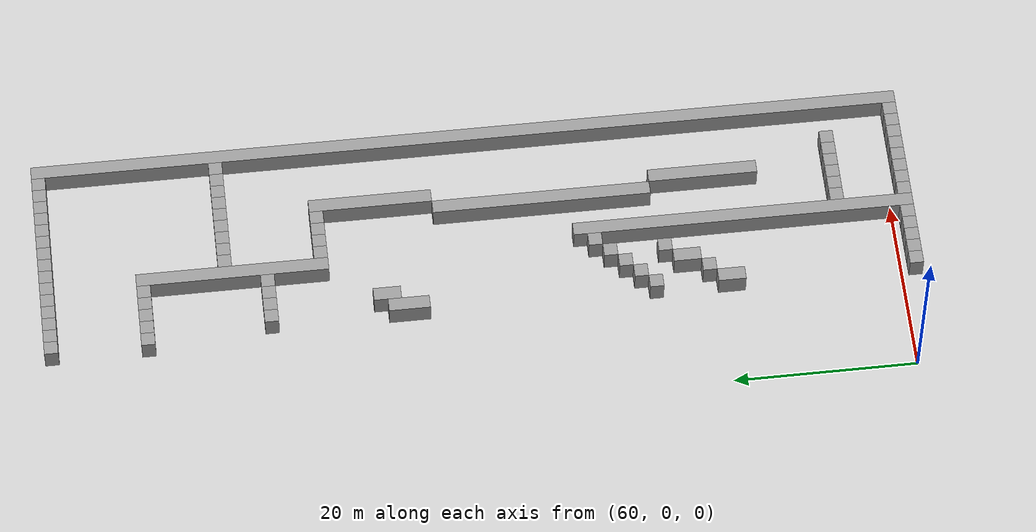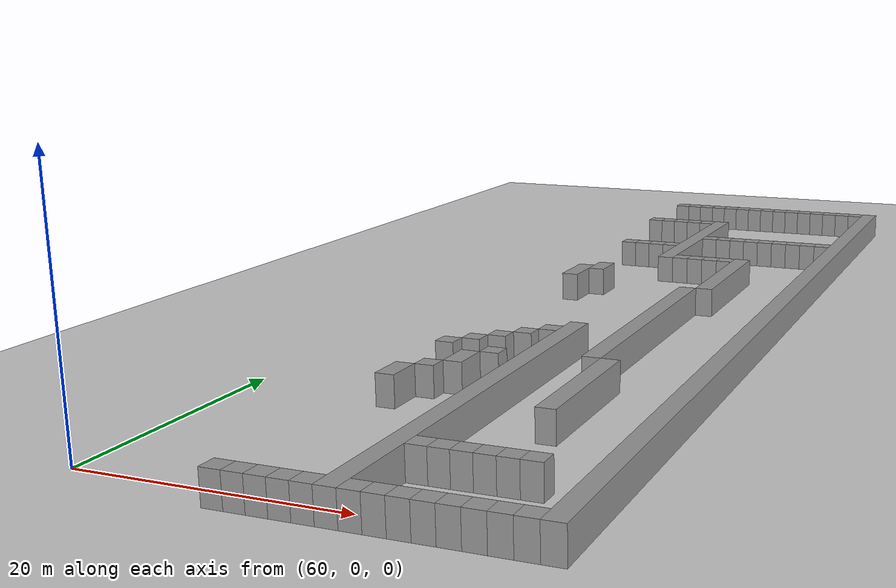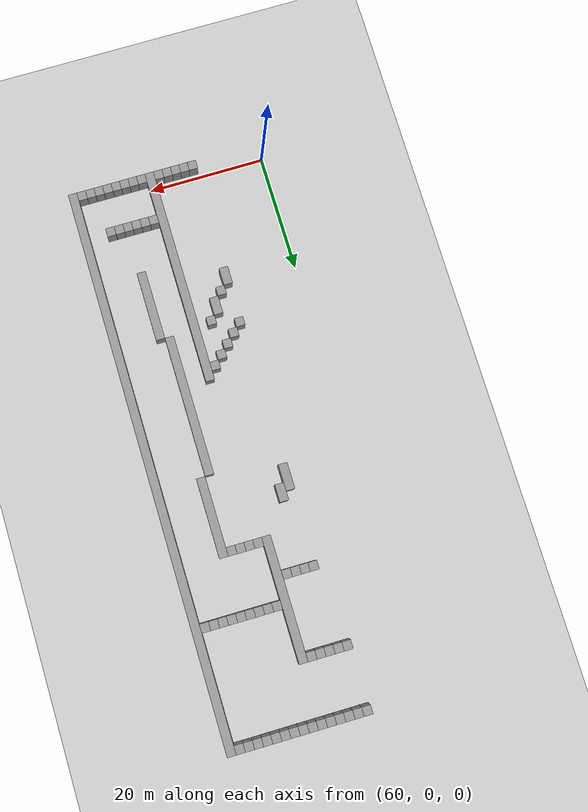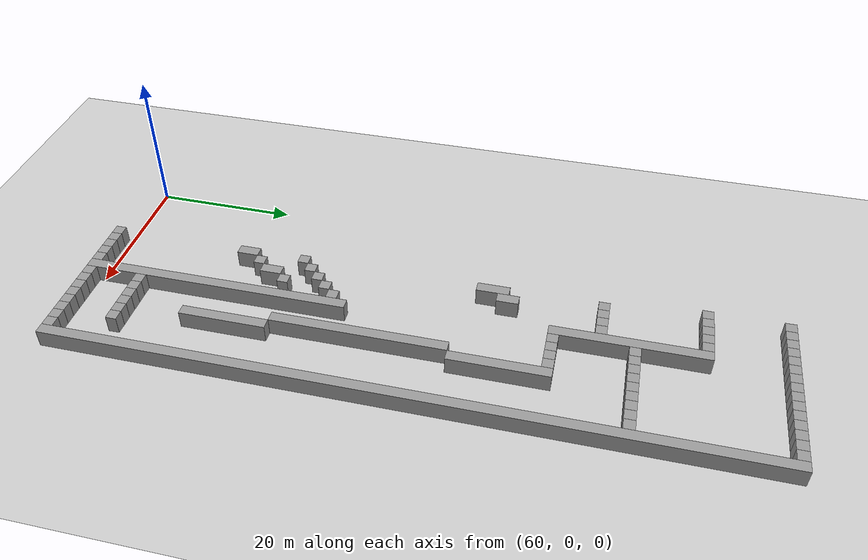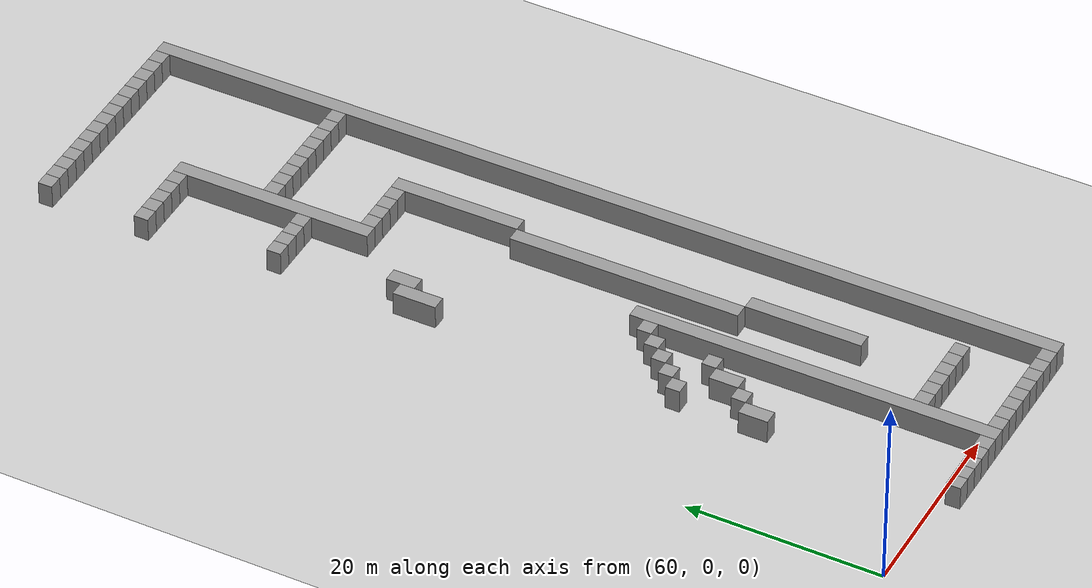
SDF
<sdf version="1.4">
 <world name="1_wall">
  <model name="ground_plane">
   <static>1</static>
   <link name="link">
    <collision name="collision">
     <geometry><plane><normal>0 0 1</normal><size>1000 1000</size></plane></geometry>
     <surface><friction><ode><mu>100</mu><mu2>50</mu2></ode></friction></surface>
    </collision>
    <visual name="visual">
     <cast_shadows>0</cast_shadows>
     <geometry><plane><normal>0 0 1</normal><size>10000 10000</size></plane></geometry>
     <material>
      <script><uri>file://media/materials/scripts/gazebo.material</uri><name>Gazebo/Grey</name></script>
     </material>
    </visual>
    <velocity_decay><linear>0</linear><angular>0</angular></velocity_decay>
   </link>
  </model>
  <model name="Wall_363">
   <static>1</static>
   <link name="Wall_363">
    <collision name="Wall_Collision_363">
     <geometry><box><size>1.5 1.5 2.5</size></box></geometry>
     <pose>0 0 1.25 0 -0 0</pose>
    </collision>
    <visual name="Wall_Visual_363">
     <pose>0 0 1.25 0 -0 0</pose>
     <geometry><box><size>1.5 1.5 2.5</size></box></geometry>
     <material>
      <script><uri>file://media/materials/scripts/gazebo.material</uri><name>Gazebo/Grey</name></script>
     </material>
    </visual>
    <velocity_decay><linear>0</linear><angular>0</angular></velocity_decay>
    <pose>70.5 82.5 0 0 0 1.5707963267948966</pose>
   </link>
  </model>
  <model name="Wall_364">
   <static>1</static>
   <link name="Wall_364">
    <collision name="Wall_Collision_364">
     <geometry><box><size>1.5 1.5 2.5</size></box></geometry>
     <pose>0 0 1.25 0 -0 0</pose>
    </collision>
    <visual name="Wall_Visual_364">
     <pose>0 0 1.25 0 -0 0</pose>
     <geometry><box><size>1.5 1.5 2.5</size></box></geometry>
     <material>
      <script><uri>file://media/materials/scripts/gazebo.material</uri><name>Gazebo/Grey</name></script>
     </material>
    </visual>
    <velocity_decay><linear>0</linear><angular>0</angular></velocity_decay>
    <pose>70.5 93.0 0 0 0 1.5707963267948966</pose>
   </link>
  </model>
  <model name="Wall_365">
   <static>1</static>
   <link name="Wall_365">
    <collision name="Wall_Collision_365">
     <geometry><box><size>1.5 1.5 2.5</size></box></geometry>
     <pose>0 0 1.25 0 -0 0</pose>
    </collision>
    <visual name="Wall_Visual_365">
     <pose>0 0 1.25 0 -0 0</pose>
     <geometry><box><size>1.5 1.5 2.5</size></box></geometry>
     <material>
      <script><uri>file://media/materials/scripts/gazebo.material</uri><name>Gazebo/Grey</name></script>
     </material>
    </visual>
    <velocity_decay><linear>0</linear><angular>0</angular></velocity_decay>
    <pose>72.0 -1.5 0 0 0 1.5707963267948966</pose>
   </link>
  </model>
  <model name="Wall_366">
   <static>1</static>
   <link name="Wall_366">
    <collision name="Wall_Collision_366">
     <geometry><box><size>3.0 1.5 2.5</size></box></geometry>
     <pose>0 0 1.25 0 -0 0</pose>
    </collision>
    <visual name="Wall_Visual_366">
     <pose>0 0 1.25 0 -0 0</pose>
     <geometry><box><size>3.0 1.5 2.5</size></box></geometry>
     <material>
      <script><uri>file://media/materials/scripts/gazebo.material</uri><name>Gazebo/Grey</name></script>
     </material>
    </visual>
    <velocity_decay><linear>0</linear><angular>0</angular></velocity_decay>
    <pose>72.0 18.75 0 0 0 1.5707963267948966</pose>
   </link>
  </model>
  <model name="Wall_367">
   <static>1</static>
   <link name="Wall_367">
    <collision name="Wall_Collision_367">
     <geometry><box><size>1.5 1.5 2.5</size></box></geometry>
     <pose>0 0 1.25 0 -0 0</pose>
    </collision>
    <visual name="Wall_Visual_367">
     <pose>0 0 1.25 0 -0 0</pose>
     <geometry><box><size>1.5 1.5 2.5</size></box></geometry>
     <material>
      <script><uri>file://media/materials/scripts/gazebo.material</uri><name>Gazebo/Grey</name></script>
     </material>
    </visual>
    <velocity_decay><linear>0</linear><angular>0</angular></velocity_decay>
    <pose>72.0 27.0 0 0 0 1.5707963267948966</pose>
   </link>
  </model>
  <model name="Wall_368">
   <static>1</static>
   <link name="Wall_368">
    <collision name="Wall_Collision_368">
     <geometry><box><size>4.5 1.5 2.5</size></box></geometry>
     <pose>0 0 1.25 0 -0 0</pose>
    </collision>
    <visual name="Wall_Visual_368">
     <pose>0 0 1.25 0 -0 0</pose>
     <geometry><box><size>4.5 1.5 2.5</size></box></geometry>
     <material>
      <script><uri>file://media/materials/scripts/gazebo.material</uri><name>Gazebo/Grey</name></script>
     </material>
    </visual>
    <velocity_decay><linear>0</linear><angular>0</angular></velocity_decay>
    <pose>72.0 54.0 0 0 0 1.5707963267948966</pose>
   </link>
  </model>
  <model name="Wall_369">
   <static>1</static>
   <link name="Wall_369">
    <collision name="Wall_Collision_369">
     <geometry><box><size>1.5 1.5 2.5</size></box></geometry>
     <pose>0 0 1.25 0 -0 0</pose>
    </collision>
    <visual name="Wall_Visual_369">
     <pose>0 0 1.25 0 -0 0</pose>
     <geometry><box><size>1.5 1.5 2.5</size></box></geometry>
     <material>
      <script><uri>file://media/materials/scripts/gazebo.material</uri><name>Gazebo/Grey</name></script>
     </material>
    </visual>
    <velocity_decay><linear>0</linear><angular>0</angular></velocity_decay>
    <pose>72.0 69.0 0 0 0 1.5707963267948966</pose>
   </link>
  </model>
  <model name="Wall_370">
   <static>1</static>
   <link name="Wall_370">
    <collision name="Wall_Collision_370">
     <geometry><box><size>1.5 1.5 2.5</size></box></geometry>
     <pose>0 0 1.25 0 -0 0</pose>
    </collision>
    <visual name="Wall_Visual_370">
     <pose>0 0 1.25 0 -0 0</pose>
     <geometry><box><size>1.5 1.5 2.5</size></box></geometry>
     <material>
      <script><uri>file://media/materials/scripts/gazebo.material</uri><name>Gazebo/Grey</name></script>
     </material>
    </visual>
    <velocity_decay><linear>0</linear><angular>0</angular></velocity_decay>
    <pose>72.0 82.5 0 0 0 1.5707963267948966</pose>
   </link>
  </model>
  <model name="Wall_371">
   <static>1</static>
   <link name="Wall_371">
    <collision name="Wall_Collision_371">
     <geometry><box><size>1.5 1.5 2.5</size></box></geometry>
     <pose>0 0 1.25 0 -0 0</pose>
    </collision>
    <visual name="Wall_Visual_371">
     <pose>0 0 1.25 0 -0 0</pose>
     <geometry><box><size>1.5 1.5 2.5</size></box></geometry>
     <material>
      <script><uri>file://media/materials/scripts/gazebo.material</uri><name>Gazebo/Grey</name></script>
     </material>
    </visual>
    <velocity_decay><linear>0</linear><angular>0</angular></velocity_decay>
    <pose>72.0 93.0 0 0 0 1.5707963267948966</pose>
   </link>
  </model>
  <model name="Wall_372">
   <static>1</static>
   <link name="Wall_372">
    <collision name="Wall_Collision_372">
     <geometry><box><size>1.5 1.5 2.5</size></box></geometry>
     <pose>0 0 1.25 0 -0 0</pose>
    </collision>
    <visual name="Wall_Visual_372">
     <pose>0 0 1.25 0 -0 0</pose>
     <geometry><box><size>1.5 1.5 2.5</size></box></geometry>
     <material>
      <script><uri>file://media/materials/scripts/gazebo.material</uri><name>Gazebo/Grey</name></script>
     </material>
    </visual>
    <velocity_decay><linear>0</linear><angular>0</angular></velocity_decay>
    <pose>73.5 -1.5 0 0 0 1.5707963267948966</pose>
   </link>
  </model>
  <model name="Wall_373">
   <static>1</static>
   <link name="Wall_373">
    <collision name="Wall_Collision_373">
     <geometry><box><size>1.5 1.5 2.5</size></box></geometry>
     <pose>0 0 1.25 0 -0 0</pose>
    </collision>
    <visual name="Wall_Visual_373">
     <pose>0 0 1.25 0 -0 0</pose>
     <geometry><box><size>1.5 1.5 2.5</size></box></geometry>
     <material>
      <script><uri>file://media/materials/scripts/gazebo.material</uri><name>Gazebo/Grey</name></script>
     </material>
    </visual>
    <velocity_decay><linear>0</linear><angular>0</angular></velocity_decay>
    <pose>73.5 21.0 0 0 0 1.5707963267948966</pose>
   </link>
  </model>
  <model name="Wall_374">
   <static>1</static>
   <link name="Wall_374">
    <collision name="Wall_Collision_374">
     <geometry><box><size>1.5 1.5 2.5</size></box></geometry>
     <pose>0 0 1.25 0 -0 0</pose>
    </collision>
    <visual name="Wall_Visual_374">
     <pose>0 0 1.25 0 -0 0</pose>
     <geometry><box><size>1.5 1.5 2.5</size></box></geometry>
     <material>
      <script><uri>file://media/materials/scripts/gazebo.material</uri><name>Gazebo/Grey</name></script>
     </material>
    </visual>
    <velocity_decay><linear>0</linear><angular>0</angular></velocity_decay>
    <pose>73.5 28.5 0 0 0 1.5707963267948966</pose>
   </link>
  </model>
  <model name="Wall_375">
   <static>1</static>
   <link name="Wall_375">
    <collision name="Wall_Collision_375">
     <geometry><box><size>3.0 1.5 2.5</size></box></geometry>
     <pose>0 0 1.25 0 -0 0</pose>
    </collision>
    <visual name="Wall_Visual_375">
     <pose>0 0 1.25 0 -0 0</pose>
     <geometry><box><size>3.0 1.5 2.5</size></box></geometry>
     <material>
      <script><uri>file://media/materials/scripts/gazebo.material</uri><name>Gazebo/Grey</name></script>
     </material>
    </visual>
    <velocity_decay><linear>0</linear><angular>0</angular></velocity_decay>
    <pose>73.5 56.25 0 0 0 1.5707963267948966</pose>
   </link>
  </model>
  <model name="Wall_376">
   <static>1</static>
   <link name="Wall_376">
    <collision name="Wall_Collision_376">
     <geometry><box><size>1.5 1.5 2.5</size></box></geometry>
     <pose>0 0 1.25 0 -0 0</pose>
    </collision>
    <visual name="Wall_Visual_376">
     <pose>0 0 1.25 0 -0 0</pose>
     <geometry><box><size>1.5 1.5 2.5</size></box></geometry>
     <material>
      <script><uri>file://media/materials/scripts/gazebo.material</uri><name>Gazebo/Grey</name></script>
     </material>
    </visual>
    <velocity_decay><linear>0</linear><angular>0</angular></velocity_decay>
    <pose>73.5 69.0 0 0 0 1.5707963267948966</pose>
   </link>
  </model>
  <model name="Wall_377">
   <static>1</static>
   <link name="Wall_377">
    <collision name="Wall_Collision_377">
     <geometry><box><size>1.5 1.5 2.5</size></box></geometry>
     <pose>0 0 1.25 0 -0 0</pose>
    </collision>
    <visual name="Wall_Visual_377">
     <pose>0 0 1.25 0 -0 0</pose>
     <geometry><box><size>1.5 1.5 2.5</size></box></geometry>
     <material>
      <script><uri>file://media/materials/scripts/gazebo.material</uri><name>Gazebo/Grey</name></script>
     </material>
    </visual>
    <velocity_decay><linear>0</linear><angular>0</angular></velocity_decay>
    <pose>73.5 82.5 0 0 0 1.5707963267948966</pose>
   </link>
  </model>
  <model name="Wall_378">
   <static>1</static>
   <link name="Wall_378">
    <collision name="Wall_Collision_378">
     <geometry><box><size>1.5 1.5 2.5</size></box></geometry>
     <pose>0 0 1.25 0 -0 0</pose>
    </collision>
    <visual name="Wall_Visual_378">
     <pose>0 0 1.25 0 -0 0</pose>
     <geometry><box><size>1.5 1.5 2.5</size></box></geometry>
     <material>
      <script><uri>file://media/materials/scripts/gazebo.material</uri><name>Gazebo/Grey</name></script>
     </material>
    </visual>
    <velocity_decay><linear>0</linear><angular>0</angular></velocity_decay>
    <pose>73.5 93.0 0 0 0 1.5707963267948966</pose>
   </link>
  </model>
  <model name="Wall_379">
   <static>1</static>
   <link name="Wall_379">
    <collision name="Wall_Collision_379">
     <geometry><box><size>1.5 1.5 2.5</size></box></geometry>
     <pose>0 0 1.25 0 -0 0</pose>
    </collision>
    <visual name="Wall_Visual_379">
     <pose>0 0 1.25 0 -0 0</pose>
     <geometry><box><size>1.5 1.5 2.5</size></box></geometry>
     <material>
      <script><uri>file://media/materials/scripts/gazebo.material</uri><name>Gazebo/Grey</name></script>
     </material>
    </visual>
    <velocity_decay><linear>0</linear><angular>0</angular></velocity_decay>
    <pose>75.0 -1.5 0 0 0 1.5707963267948966</pose>
   </link>
  </model>
  <model name="Wall_380">
   <static>1</static>
   <link name="Wall_380">
    <collision name="Wall_Collision_380">
     <geometry><box><size>3.0 1.5 2.5</size></box></geometry>
     <pose>0 0 1.25 0 -0 0</pose>
    </collision>
    <visual name="Wall_Visual_380">
     <pose>0 0 1.25 0 -0 0</pose>
     <geometry><box><size>3.0 1.5 2.5</size></box></geometry>
     <material>
      <script><uri>file://media/materials/scripts/gazebo.material</uri><name>Gazebo/Grey</name></script>
     </material>
    </visual>
    <velocity_decay><linear>0</linear><angular>0</angular></velocity_decay>
    <pose>75.0 23.25 0 0 0 1.5707963267948966</pose>
   </link>
  </model>
  <model name="Wall_381">
   <static>1</static>
   <link name="Wall_381">
    <collision name="Wall_Collision_381">
     <geometry><box><size>1.5 1.5 2.5</size></box></geometry>
     <pose>0 0 1.25 0 -0 0</pose>
    </collision>
    <visual name="Wall_Visual_381">
     <pose>0 0 1.25 0 -0 0</pose>
     <geometry><box><size>1.5 1.5 2.5</size></box></geometry>
     <material>
      <script><uri>file://media/materials/scripts/gazebo.material</uri><name>Gazebo/Grey</name></script>
     </material>
    </visual>
    <velocity_decay><linear>0</linear><angular>0</angular></velocity_decay>
    <pose>75.0 30.0 0 0 0 1.5707963267948966</pose>
   </link>
  </model>
  <model name="Wall_382">
   <static>1</static>
   <link name="Wall_382">
    <collision name="Wall_Collision_382">
     <geometry><box><size>1.5 1.5 2.5</size></box></geometry>
     <pose>0 0 1.25 0 -0 0</pose>
    </collision>
    <visual name="Wall_Visual_382">
     <pose>0 0 1.25 0 -0 0</pose>
     <geometry><box><size>1.5 1.5 2.5</size></box></geometry>
     <material>
      <script><uri>file://media/materials/scripts/gazebo.material</uri><name>Gazebo/Grey</name></script>
     </material>
    </visual>
    <velocity_decay><linear>0</linear><angular>0</angular></velocity_decay>
    <pose>75.0 69.0 0 0 0 1.5707963267948966</pose>
   </link>
  </model>
  <model name="Wall_383">
   <static>1</static>
   <link name="Wall_383">
    <collision name="Wall_Collision_383">
     <geometry><box><size>1.5 1.5 2.5</size></box></geometry>
     <pose>0 0 1.25 0 -0 0</pose>
    </collision>
    <visual name="Wall_Visual_383">
     <pose>0 0 1.25 0 -0 0</pose>
     <geometry><box><size>1.5 1.5 2.5</size></box></geometry>
     <material>
      <script><uri>file://media/materials/scripts/gazebo.material</uri><name>Gazebo/Grey</name></script>
     </material>
    </visual>
    <velocity_decay><linear>0</linear><angular>0</angular></velocity_decay>
    <pose>75.0 82.5 0 0 0 1.5707963267948966</pose>
   </link>
  </model>
  <model name="Wall_384">
   <static>1</static>
   <link name="Wall_384">
    <collision name="Wall_Collision_384">
     <geometry><box><size>1.5 1.5 2.5</size></box></geometry>
     <pose>0 0 1.25 0 -0 0</pose>
    </collision>
    <visual name="Wall_Visual_384">
     <pose>0 0 1.25 0 -0 0</pose>
     <geometry><box><size>1.5 1.5 2.5</size></box></geometry>
     <material>
      <script><uri>file://media/materials/scripts/gazebo.material</uri><name>Gazebo/Grey</name></script>
     </material>
    </visual>
    <velocity_decay><linear>0</linear><angular>0</angular></velocity_decay>
    <pose>75.0 93.0 0 0 0 1.5707963267948966</pose>
   </link>
  </model>
  <model name="Wall_385">
   <static>1</static>
   <link name="Wall_385">
    <collision name="Wall_Collision_385">
     <geometry><box><size>1.5 1.5 2.5</size></box></geometry>
     <pose>0 0 1.25 0 -0 0</pose>
    </collision>
    <visual name="Wall_Visual_385">
     <pose>0 0 1.25 0 -0 0</pose>
     <geometry><box><size>1.5 1.5 2.5</size></box></geometry>
     <material>
      <script><uri>file://media/materials/scripts/gazebo.material</uri><name>Gazebo/Grey</name></script>
     </material>
    </visual>
    <velocity_decay><linear>0</linear><angular>0</angular></velocity_decay>
    <pose>76.5 -1.5 0 0 0 1.5707963267948966</pose>
   </link>
  </model>
  <model name="Wall_386">
   <static>1</static>
   <link name="Wall_386">
    <collision name="Wall_Collision_386">
     <geometry><box><size>1.5 1.5 2.5</size></box></geometry>
     <pose>0 0 1.25 0 -0 0</pose>
    </collision>
    <visual name="Wall_Visual_386">
     <pose>0 0 1.25 0 -0 0</pose>
     <geometry><box><size>1.5 1.5 2.5</size></box></geometry>
     <material>
      <script><uri>file://media/materials/scripts/gazebo.material</uri><name>Gazebo/Grey</name></script>
     </material>
    </visual>
    <velocity_decay><linear>0</linear><angular>0</angular></velocity_decay>
    <pose>76.5 25.5 0 0 0 1.5707963267948966</pose>
   </link>
  </model>
  <model name="Wall_387">
   <static>1</static>
   <link name="Wall_387">
    <collision name="Wall_Collision_387">
     <geometry><box><size>1.5 1.5 2.5</size></box></geometry>
     <pose>0 0 1.25 0 -0 0</pose>
    </collision>
    <visual name="Wall_Visual_387">
     <pose>0 0 1.25 0 -0 0</pose>
     <geometry><box><size>1.5 1.5 2.5</size></box></geometry>
     <material>
      <script><uri>file://media/materials/scripts/gazebo.material</uri><name>Gazebo/Grey</name></script>
     </material>
    </visual>
    <velocity_decay><linear>0</linear><angular>0</angular></velocity_decay>
    <pose>76.5 31.5 0 0 0 1.5707963267948966</pose>
   </link>
  </model>
  <model name="Wall_388">
   <static>1</static>
   <link name="Wall_388">
    <collision name="Wall_Collision_388">
     <geometry><box><size>1.5 1.5 2.5</size></box></geometry>
     <pose>0 0 1.25 0 -0 0</pose>
    </collision>
    <visual name="Wall_Visual_388">
     <pose>0 0 1.25 0 -0 0</pose>
     <geometry><box><size>1.5 1.5 2.5</size></box></geometry>
     <material>
      <script><uri>file://media/materials/scripts/gazebo.material</uri><name>Gazebo/Grey</name></script>
     </material>
    </visual>
    <velocity_decay><linear>0</linear><angular>0</angular></velocity_decay>
    <pose>76.5 69.0 0 0 0 1.5707963267948966</pose>
   </link>
  </model>
  <model name="Wall_389">
   <static>1</static>
   <link name="Wall_389">
    <collision name="Wall_Collision_389">
     <geometry><box><size>1.5 1.5 2.5</size></box></geometry>
     <pose>0 0 1.25 0 -0 0</pose>
    </collision>
    <visual name="Wall_Visual_389">
     <pose>0 0 1.25 0 -0 0</pose>
     <geometry><box><size>1.5 1.5 2.5</size></box></geometry>
     <material>
      <script><uri>file://media/materials/scripts/gazebo.material</uri><name>Gazebo/Grey</name></script>
     </material>
    </visual>
    <velocity_decay><linear>0</linear><angular>0</angular></velocity_decay>
    <pose>76.5 82.5 0 0 0 1.5707963267948966</pose>
   </link>
  </model>
  <model name="Wall_390">
   <static>1</static>
   <link name="Wall_390">
    <collision name="Wall_Collision_390">
     <geometry><box><size>1.5 1.5 2.5</size></box></geometry>
     <pose>0 0 1.25 0 -0 0</pose>
    </collision>
    <visual name="Wall_Visual_390">
     <pose>0 0 1.25 0 -0 0</pose>
     <geometry><box><size>1.5 1.5 2.5</size></box></geometry>
     <material>
      <script><uri>file://media/materials/scripts/gazebo.material</uri><name>Gazebo/Grey</name></script>
     </material>
    </visual>
    <velocity_decay><linear>0</linear><angular>0</angular></velocity_decay>
    <pose>76.5 93.0 0 0 0 1.5707963267948966</pose>
   </link>
  </model>
  <model name="Wall_391">
   <static>1</static>
   <link name="Wall_391">
    <collision name="Wall_Collision_391">
     <geometry><box><size>1.5 1.5 2.5</size></box></geometry>
     <pose>0 0 1.25 0 -0 0</pose>
    </collision>
    <visual name="Wall_Visual_391">
     <pose>0 0 1.25 0 -0 0</pose>
     <geometry><box><size>1.5 1.5 2.5</size></box></geometry>
     <material>
      <script><uri>file://media/materials/scripts/gazebo.material</uri><name>Gazebo/Grey</name></script>
     </material>
    </visual>
    <velocity_decay><linear>0</linear><angular>0</angular></velocity_decay>
    <pose>78.0 -1.5 0 0 0 1.5707963267948966</pose>
   </link>
  </model>
  <model name="Wall_392">
   <static>1</static>
   <link name="Wall_392">
    <collision name="Wall_Collision_392">
     <geometry><box><size>1.5 1.5 2.5</size></box></geometry>
     <pose>0 0 1.25 0 -0 0</pose>
    </collision>
    <visual name="Wall_Visual_392">
     <pose>0 0 1.25 0 -0 0</pose>
     <geometry><box><size>1.5 1.5 2.5</size></box></geometry>
     <material>
      <script><uri>file://media/materials/scripts/gazebo.material</uri><name>Gazebo/Grey</name></script>
     </material>
    </visual>
    <velocity_decay><linear>0</linear><angular>0</angular></velocity_decay>
    <pose>78.0 33.0 0 0 0 1.5707963267948966</pose>
   </link>
  </model>
  <model name="Wall_393">
   <static>1</static>
   <link name="Wall_393">
    <collision name="Wall_Collision_393">
     <geometry><box><size>21.0 1.5 2.5</size></box></geometry>
     <pose>0 0 1.25 0 -0 0</pose>
    </collision>
    <visual name="Wall_Visual_393">
     <pose>0 0 1.25 0 -0 0</pose>
     <geometry><box><size>21.0 1.5 2.5</size></box></geometry>
     <material>
      <script><uri>file://media/materials/scripts/gazebo.material</uri><name>Gazebo/Grey</name></script>
     </material>
    </visual>
    <velocity_decay><linear>0</linear><angular>0</angular></velocity_decay>
    <pose>78.0 72.75 0 0 0 1.5707963267948966</pose>
   </link>
  </model>
  <model name="Wall_394">
   <static>1</static>
   <link name="Wall_394">
    <collision name="Wall_Collision_394">
     <geometry><box><size>1.5 1.5 2.5</size></box></geometry>
     <pose>0 0 1.25 0 -0 0</pose>
    </collision>
    <visual name="Wall_Visual_394">
     <pose>0 0 1.25 0 -0 0</pose>
     <geometry><box><size>1.5 1.5 2.5</size></box></geometry>
     <material>
      <script><uri>file://media/materials/scripts/gazebo.material</uri><name>Gazebo/Grey</name></script>
     </material>
    </visual>
    <velocity_decay><linear>0</linear><angular>0</angular></velocity_decay>
    <pose>78.0 93.0 0 0 0 1.5707963267948966</pose>
   </link>
  </model>
  <model name="Wall_395">
   <static>1</static>
   <link name="Wall_395">
    <collision name="Wall_Collision_395">
     <geometry><box><size>37.5 1.5 2.5</size></box></geometry>
     <pose>0 0 1.25 0 -0 0</pose>
    </collision>
    <visual name="Wall_Visual_395">
     <pose>0 0 1.25 0 -0 0</pose>
     <geometry><box><size>37.5 1.5 2.5</size></box></geometry>
     <material>
      <script><uri>file://media/materials/scripts/gazebo.material</uri><name>Gazebo/Grey</name></script>
     </material>
    </visual>
    <velocity_decay><linear>0</linear><angular>0</angular></velocity_decay>
    <pose>79.5 16.5 0 0 0 1.5707963267948966</pose>
   </link>
  </model>
  <model name="Wall_396">
   <static>1</static>
   <link name="Wall_396">
    <collision name="Wall_Collision_396">
     <geometry><box><size>1.5 1.5 2.5</size></box></geometry>
     <pose>0 0 1.25 0 -0 0</pose>
    </collision>
    <visual name="Wall_Visual_396">
     <pose>0 0 1.25 0 -0 0</pose>
     <geometry><box><size>1.5 1.5 2.5</size></box></geometry>
     <material>
      <script><uri>file://media/materials/scripts/gazebo.material</uri><name>Gazebo/Grey</name></script>
     </material>
    </visual>
    <velocity_decay><linear>0</linear><angular>0</angular></velocity_decay>
    <pose>79.5 63.0 0 0 0 1.5707963267948966</pose>
   </link>
  </model>
  <model name="Wall_397">
   <static>1</static>
   <link name="Wall_397">
    <collision name="Wall_Collision_397">
     <geometry><box><size>1.5 1.5 2.5</size></box></geometry>
     <pose>0 0 1.25 0 -0 0</pose>
    </collision>
    <visual name="Wall_Visual_397">
     <pose>0 0 1.25 0 -0 0</pose>
     <geometry><box><size>1.5 1.5 2.5</size></box></geometry>
     <material>
      <script><uri>file://media/materials/scripts/gazebo.material</uri><name>Gazebo/Grey</name></script>
     </material>
    </visual>
    <velocity_decay><linear>0</linear><angular>0</angular></velocity_decay>
    <pose>79.5 73.5 0 0 0 1.5707963267948966</pose>
   </link>
  </model>
  <model name="Wall_398">
   <static>1</static>
   <link name="Wall_398">
    <collision name="Wall_Collision_398">
     <geometry><box><size>1.5 1.5 2.5</size></box></geometry>
     <pose>0 0 1.25 0 -0 0</pose>
    </collision>
    <visual name="Wall_Visual_398">
     <pose>0 0 1.25 0 -0 0</pose>
     <geometry><box><size>1.5 1.5 2.5</size></box></geometry>
     <material>
      <script><uri>file://media/materials/scripts/gazebo.material</uri><name>Gazebo/Grey</name></script>
     </material>
    </visual>
    <velocity_decay><linear>0</linear><angular>0</angular></velocity_decay>
    <pose>79.5 93.0 0 0 0 1.5707963267948966</pose>
   </link>
  </model>
  <model name="Wall_399">
   <static>1</static>
   <link name="Wall_399">
    <collision name="Wall_Collision_399">
     <geometry><box><size>1.5 1.5 2.5</size></box></geometry>
     <pose>0 0 1.25 0 -0 0</pose>
    </collision>
    <visual name="Wall_Visual_399">
     <pose>0 0 1.25 0 -0 0</pose>
     <geometry><box><size>1.5 1.5 2.5</size></box></geometry>
     <material>
      <script><uri>file://media/materials/scripts/gazebo.material</uri><name>Gazebo/Grey</name></script>
     </material>
    </visual>
    <velocity_decay><linear>0</linear><angular>0</angular></velocity_decay>
    <pose>81.0 -1.5 0 0 0 1.5707963267948966</pose>
   </link>
  </model>
  <model name="Wall_400">
   <static>1</static>
   <link name="Wall_400">
    <collision name="Wall_Collision_400">
     <geometry><box><size>1.5 1.5 2.5</size></box></geometry>
     <pose>0 0 1.25 0 -0 0</pose>
    </collision>
    <visual name="Wall_Visual_400">
     <pose>0 0 1.25 0 -0 0</pose>
     <geometry><box><size>1.5 1.5 2.5</size></box></geometry>
     <material>
      <script><uri>file://media/materials/scripts/gazebo.material</uri><name>Gazebo/Grey</name></script>
     </material>
    </visual>
    <velocity_decay><linear>0</linear><angular>0</angular></velocity_decay>
    <pose>81.0 6.0 0 0 0 1.5707963267948966</pose>
   </link>
  </model>
  <model name="Wall_401">
   <static>1</static>
   <link name="Wall_401">
    <collision name="Wall_Collision_401">
     <geometry><box><size>1.5 1.5 2.5</size></box></geometry>
     <pose>0 0 1.25 0 -0 0</pose>
    </collision>
    <visual name="Wall_Visual_401">
     <pose>0 0 1.25 0 -0 0</pose>
     <geometry><box><size>1.5 1.5 2.5</size></box></geometry>
     <material>
      <script><uri>file://media/materials/scripts/gazebo.material</uri><name>Gazebo/Grey</name></script>
     </material>
    </visual>
    <velocity_decay><linear>0</linear><angular>0</angular></velocity_decay>
    <pose>81.0 63.0 0 0 0 1.5707963267948966</pose>
   </link>
  </model>
  <model name="Wall_402">
   <static>1</static>
   <link name="Wall_402">
    <collision name="Wall_Collision_402">
     <geometry><box><size>1.5 1.5 2.5</size></box></geometry>
     <pose>0 0 1.25 0 -0 0</pose>
    </collision>
    <visual name="Wall_Visual_402">
     <pose>0 0 1.25 0 -0 0</pose>
     <geometry><box><size>1.5 1.5 2.5</size></box></geometry>
     <material>
      <script><uri>file://media/materials/scripts/gazebo.material</uri><name>Gazebo/Grey</name></script>
     </material>
    </visual>
    <velocity_decay><linear>0</linear><angular>0</angular></velocity_decay>
    <pose>81.0 73.5 0 0 0 1.5707963267948966</pose>
   </link>
  </model>
  <model name="Wall_403">
   <static>1</static>
   <link name="Wall_403">
    <collision name="Wall_Collision_403">
     <geometry><box><size>1.5 1.5 2.5</size></box></geometry>
     <pose>0 0 1.25 0 -0 0</pose>
    </collision>
    <visual name="Wall_Visual_403">
     <pose>0 0 1.25 0 -0 0</pose>
     <geometry><box><size>1.5 1.5 2.5</size></box></geometry>
     <material>
      <script><uri>file://media/materials/scripts/gazebo.material</uri><name>Gazebo/Grey</name></script>
     </material>
    </visual>
    <velocity_decay><linear>0</linear><angular>0</angular></velocity_decay>
    <pose>81.0 93.0 0 0 0 1.5707963267948966</pose>
   </link>
  </model>
  <model name="Wall_404">
   <static>1</static>
   <link name="Wall_404">
    <collision name="Wall_Collision_404">
     <geometry><box><size>1.5 1.5 2.5</size></box></geometry>
     <pose>0 0 1.25 0 -0 0</pose>
    </collision>
    <visual name="Wall_Visual_404">
     <pose>0 0 1.25 0 -0 0</pose>
     <geometry><box><size>1.5 1.5 2.5</size></box></geometry>
     <material>
      <script><uri>file://media/materials/scripts/gazebo.material</uri><name>Gazebo/Grey</name></script>
     </material>
    </visual>
    <velocity_decay><linear>0</linear><angular>0</angular></velocity_decay>
    <pose>82.5 -1.5 0 0 0 1.5707963267948966</pose>
   </link>
  </model>
  <model name="Wall_405">
   <static>1</static>
   <link name="Wall_405">
    <collision name="Wall_Collision_405">
     <geometry><box><size>1.5 1.5 2.5</size></box></geometry>
     <pose>0 0 1.25 0 -0 0</pose>
    </collision>
    <visual name="Wall_Visual_405">
     <pose>0 0 1.25 0 -0 0</pose>
     <geometry><box><size>1.5 1.5 2.5</size></box></geometry>
     <material>
      <script><uri>file://media/materials/scripts/gazebo.material</uri><name>Gazebo/Grey</name></script>
     </material>
    </visual>
    <velocity_decay><linear>0</linear><angular>0</angular></velocity_decay>
    <pose>82.5 6.0 0 0 0 1.5707963267948966</pose>
   </link>
  </model>
  <model name="Wall_406">
   <static>1</static>
   <link name="Wall_406">
    <collision name="Wall_Collision_406">
     <geometry><box><size>1.5 1.5 2.5</size></box></geometry>
     <pose>0 0 1.25 0 -0 0</pose>
    </collision>
    <visual name="Wall_Visual_406">
     <pose>0 0 1.25 0 -0 0</pose>
     <geometry><box><size>1.5 1.5 2.5</size></box></geometry>
     <material>
      <script><uri>file://media/materials/scripts/gazebo.material</uri><name>Gazebo/Grey</name></script>
     </material>
    </visual>
    <velocity_decay><linear>0</linear><angular>0</angular></velocity_decay>
    <pose>82.5 63.0 0 0 0 1.5707963267948966</pose>
   </link>
  </model>
  <model name="Wall_407">
   <static>1</static>
   <link name="Wall_407">
    <collision name="Wall_Collision_407">
     <geometry><box><size>1.5 1.5 2.5</size></box></geometry>
     <pose>0 0 1.25 0 -0 0</pose>
    </collision>
    <visual name="Wall_Visual_407">
     <pose>0 0 1.25 0 -0 0</pose>
     <geometry><box><size>1.5 1.5 2.5</size></box></geometry>
     <material>
      <script><uri>file://media/materials/scripts/gazebo.material</uri><name>Gazebo/Grey</name></script>
     </material>
    </visual>
    <velocity_decay><linear>0</linear><angular>0</angular></velocity_decay>
    <pose>82.5 73.5 0 0 0 1.5707963267948966</pose>
   </link>
  </model>
  <model name="Wall_408">
   <static>1</static>
   <link name="Wall_408">
    <collision name="Wall_Collision_408">
     <geometry><box><size>1.5 1.5 2.5</size></box></geometry>
     <pose>0 0 1.25 0 -0 0</pose>
    </collision>
    <visual name="Wall_Visual_408">
     <pose>0 0 1.25 0 -0 0</pose>
     <geometry><box><size>1.5 1.5 2.5</size></box></geometry>
     <material>
      <script><uri>file://media/materials/scripts/gazebo.material</uri><name>Gazebo/Grey</name></script>
     </material>
    </visual>
    <velocity_decay><linear>0</linear><angular>0</angular></velocity_decay>
    <pose>82.5 93.0 0 0 0 1.5707963267948966</pose>
   </link>
  </model>
  <model name="Wall_409">
   <static>1</static>
   <link name="Wall_409">
    <collision name="Wall_Collision_409">
     <geometry><box><size>1.5 1.5 2.5</size></box></geometry>
     <pose>0 0 1.25 0 -0 0</pose>
    </collision>
    <visual name="Wall_Visual_409">
     <pose>0 0 1.25 0 -0 0</pose>
     <geometry><box><size>1.5 1.5 2.5</size></box></geometry>
     <material>
      <script><uri>file://media/materials/scripts/gazebo.material</uri><name>Gazebo/Grey</name></script>
     </material>
    </visual>
    <velocity_decay><linear>0</linear><angular>0</angular></velocity_decay>
    <pose>84.0 -1.5 0 0 0 1.5707963267948966</pose>
   </link>
  </model>
  <model name="Wall_410">
   <static>1</static>
   <link name="Wall_410">
    <collision name="Wall_Collision_410">
     <geometry><box><size>1.5 1.5 2.5</size></box></geometry>
     <pose>0 0 1.25 0 -0 0</pose>
    </collision>
    <visual name="Wall_Visual_410">
     <pose>0 0 1.25 0 -0 0</pose>
     <geometry><box><size>1.5 1.5 2.5</size></box></geometry>
     <material>
      <script><uri>file://media/materials/scripts/gazebo.material</uri><name>Gazebo/Grey</name></script>
     </material>
    </visual>
    <velocity_decay><linear>0</linear><angular>0</angular></velocity_decay>
    <pose>84.0 6.0 0 0 0 1.5707963267948966</pose>
   </link>
  </model>
  <model name="Wall_411">
   <static>1</static>
   <link name="Wall_411">
    <collision name="Wall_Collision_411">
     <geometry><box><size>24.0 1.5 2.5</size></box></geometry>
     <pose>0 0 1.25 0 -0 0</pose>
    </collision>
    <visual name="Wall_Visual_411">
     <pose>0 0 1.25 0 -0 0</pose>
     <geometry><box><size>24.0 1.5 2.5</size></box></geometry>
     <material>
      <script><uri>file://media/materials/scripts/gazebo.material</uri><name>Gazebo/Grey</name></script>
     </material>
    </visual>
    <velocity_decay><linear>0</linear><angular>0</angular></velocity_decay>
    <pose>84.0 38.25 0 0 0 1.5707963267948966</pose>
   </link>
  </model>
  <model name="Wall_412">
   <static>1</static>
   <link name="Wall_412">
    <collision name="Wall_Collision_412">
     <geometry><box><size>1.5 1.5 2.5</size></box></geometry>
     <pose>0 0 1.25 0 -0 0</pose>
    </collision>
    <visual name="Wall_Visual_412">
     <pose>0 0 1.25 0 -0 0</pose>
     <geometry><box><size>1.5 1.5 2.5</size></box></geometry>
     <material>
      <script><uri>file://media/materials/scripts/gazebo.material</uri><name>Gazebo/Grey</name></script>
     </material>
    </visual>
    <velocity_decay><linear>0</linear><angular>0</angular></velocity_decay>
    <pose>84.0 63.0 0 0 0 1.5707963267948966</pose>
   </link>
  </model>
  <model name="Wall_413">
   <static>1</static>
   <link name="Wall_413">
    <collision name="Wall_Collision_413">
     <geometry><box><size>1.5 1.5 2.5</size></box></geometry>
     <pose>0 0 1.25 0 -0 0</pose>
    </collision>
    <visual name="Wall_Visual_413">
     <pose>0 0 1.25 0 -0 0</pose>
     <geometry><box><size>1.5 1.5 2.5</size></box></geometry>
     <material>
      <script><uri>file://media/materials/scripts/gazebo.material</uri><name>Gazebo/Grey</name></script>
     </material>
    </visual>
    <velocity_decay><linear>0</linear><angular>0</angular></velocity_decay>
    <pose>84.0 73.5 0 0 0 1.5707963267948966</pose>
   </link>
  </model>
  <model name="Wall_414">
   <static>1</static>
   <link name="Wall_414">
    <collision name="Wall_Collision_414">
     <geometry><box><size>1.5 1.5 2.5</size></box></geometry>
     <pose>0 0 1.25 0 -0 0</pose>
    </collision>
    <visual name="Wall_Visual_414">
     <pose>0 0 1.25 0 -0 0</pose>
     <geometry><box><size>1.5 1.5 2.5</size></box></geometry>
     <material>
      <script><uri>file://media/materials/scripts/gazebo.material</uri><name>Gazebo/Grey</name></script>
     </material>
    </visual>
    <velocity_decay><linear>0</linear><angular>0</angular></velocity_decay>
    <pose>84.0 93.0 0 0 0 1.5707963267948966</pose>
   </link>
  </model>
  <model name="Wall_415">
   <static>1</static>
   <link name="Wall_415">
    <collision name="Wall_Collision_415">
     <geometry><box><size>1.5 1.5 2.5</size></box></geometry>
     <pose>0 0 1.25 0 -0 0</pose>
    </collision>
    <visual name="Wall_Visual_415">
     <pose>0 0 1.25 0 -0 0</pose>
     <geometry><box><size>1.5 1.5 2.5</size></box></geometry>
     <material>
      <script><uri>file://media/materials/scripts/gazebo.material</uri><name>Gazebo/Grey</name></script>
     </material>
    </visual>
    <velocity_decay><linear>0</linear><angular>0</angular></velocity_decay>
    <pose>85.5 -1.5 0 0 0 1.5707963267948966</pose>
   </link>
  </model>
  <model name="Wall_416">
   <static>1</static>
   <link name="Wall_416">
    <collision name="Wall_Collision_416">
     <geometry><box><size>1.5 1.5 2.5</size></box></geometry>
     <pose>0 0 1.25 0 -0 0</pose>
    </collision>
    <visual name="Wall_Visual_416">
     <pose>0 0 1.25 0 -0 0</pose>
     <geometry><box><size>1.5 1.5 2.5</size></box></geometry>
     <material>
      <script><uri>file://media/materials/scripts/gazebo.material</uri><name>Gazebo/Grey</name></script>
     </material>
    </visual>
    <velocity_decay><linear>0</linear><angular>0</angular></velocity_decay>
    <pose>85.5 6.0 0 0 0 1.5707963267948966</pose>
   </link>
  </model>
  <model name="Wall_417">
   <static>1</static>
   <link name="Wall_417">
    <collision name="Wall_Collision_417">
     <geometry><box><size>12.0 1.5 2.5</size></box></geometry>
     <pose>0 0 1.25 0 -0 0</pose>
    </collision>
    <visual name="Wall_Visual_417">
     <pose>0 0 1.25 0 -0 0</pose>
     <geometry><box><size>12.0 1.5 2.5</size></box></geometry>
     <material>
      <script><uri>file://media/materials/scripts/gazebo.material</uri><name>Gazebo/Grey</name></script>
     </material>
    </visual>
    <velocity_decay><linear>0</linear><angular>0</angular></velocity_decay>
    <pose>85.5 20.25 0 0 0 1.5707963267948966</pose>
   </link>
  </model>
  <model name="Wall_418">
   <static>1</static>
   <link name="Wall_418">
    <collision name="Wall_Collision_418">
     <geometry><box><size>13.5 1.5 2.5</size></box></geometry>
     <pose>0 0 1.25 0 -0 0</pose>
    </collision>
    <visual name="Wall_Visual_418">
     <pose>0 0 1.25 0 -0 0</pose>
     <geometry><box><size>13.5 1.5 2.5</size></box></geometry>
     <material>
      <script><uri>file://media/materials/scripts/gazebo.material</uri><name>Gazebo/Grey</name></script>
     </material>
    </visual>
    <velocity_decay><linear>0</linear><angular>0</angular></velocity_decay>
    <pose>85.5 57.0 0 0 0 1.5707963267948966</pose>
   </link>
  </model>
  <model name="Wall_419">
   <static>1</static>
   <link name="Wall_419">
    <collision name="Wall_Collision_419">
     <geometry><box><size>1.5 1.5 2.5</size></box></geometry>
     <pose>0 0 1.25 0 -0 0</pose>
    </collision>
    <visual name="Wall_Visual_419">
     <pose>0 0 1.25 0 -0 0</pose>
     <geometry><box><size>1.5 1.5 2.5</size></box></geometry>
     <material>
      <script><uri>file://media/materials/scripts/gazebo.material</uri><name>Gazebo/Grey</name></script>
     </material>
    </visual>
    <velocity_decay><linear>0</linear><angular>0</angular></velocity_decay>
    <pose>85.5 73.5 0 0 0 1.5707963267948966</pose>
   </link>
  </model>
  <model name="Wall_420">
   <static>1</static>
   <link name="Wall_420">
    <collision name="Wall_Collision_420">
     <geometry><box><size>1.5 1.5 2.5</size></box></geometry>
     <pose>0 0 1.25 0 -0 0</pose>
    </collision>
    <visual name="Wall_Visual_420">
     <pose>0 0 1.25 0 -0 0</pose>
     <geometry><box><size>1.5 1.5 2.5</size></box></geometry>
     <material>
      <script><uri>file://media/materials/scripts/gazebo.material</uri><name>Gazebo/Grey</name></script>
     </material>
    </visual>
    <velocity_decay><linear>0</linear><angular>0</angular></velocity_decay>
    <pose>85.5 93.0 0 0 0 1.5707963267948966</pose>
   </link>
  </model>
  <model name="Wall_421">
   <static>1</static>
   <link name="Wall_421">
    <collision name="Wall_Collision_421">
     <geometry><box><size>1.5 1.5 2.5</size></box></geometry>
     <pose>0 0 1.25 0 -0 0</pose>
    </collision>
    <visual name="Wall_Visual_421">
     <pose>0 0 1.25 0 -0 0</pose>
     <geometry><box><size>1.5 1.5 2.5</size></box></geometry>
     <material>
      <script><uri>file://media/materials/scripts/gazebo.material</uri><name>Gazebo/Grey</name></script>
     </material>
    </visual>
    <velocity_decay><linear>0</linear><angular>0</angular></velocity_decay>
    <pose>87.0 -1.5 0 0 0 1.5707963267948966</pose>
   </link>
  </model>
  <model name="Wall_422">
   <static>1</static>
   <link name="Wall_422">
    <collision name="Wall_Collision_422">
     <geometry><box><size>1.5 1.5 2.5</size></box></geometry>
     <pose>0 0 1.25 0 -0 0</pose>
    </collision>
    <visual name="Wall_Visual_422">
     <pose>0 0 1.25 0 -0 0</pose>
     <geometry><box><size>1.5 1.5 2.5</size></box></geometry>
     <material>
      <script><uri>file://media/materials/scripts/gazebo.material</uri><name>Gazebo/Grey</name></script>
     </material>
    </visual>
    <velocity_decay><linear>0</linear><angular>0</angular></velocity_decay>
    <pose>87.0 6.0 0 0 0 1.5707963267948966</pose>
   </link>
  </model>
  <model name="Wall_423">
   <static>1</static>
   <link name="Wall_423">
    <collision name="Wall_Collision_423">
     <geometry><box><size>1.5 1.5 2.5</size></box></geometry>
     <pose>0 0 1.25 0 -0 0</pose>
    </collision>
    <visual name="Wall_Visual_423">
     <pose>0 0 1.25 0 -0 0</pose>
     <geometry><box><size>1.5 1.5 2.5</size></box></geometry>
     <material>
      <script><uri>file://media/materials/scripts/gazebo.material</uri><name>Gazebo/Grey</name></script>
     </material>
    </visual>
    <velocity_decay><linear>0</linear><angular>0</angular></velocity_decay>
    <pose>87.0 73.5 0 0 0 1.5707963267948966</pose>
   </link>
  </model>
  <model name="Wall_424">
   <static>1</static>
   <link name="Wall_424">
    <collision name="Wall_Collision_424">
     <geometry><box><size>1.5 1.5 2.5</size></box></geometry>
     <pose>0 0 1.25 0 -0 0</pose>
    </collision>
    <visual name="Wall_Visual_424">
     <pose>0 0 1.25 0 -0 0</pose>
     <geometry><box><size>1.5 1.5 2.5</size></box></geometry>
     <material>
      <script><uri>file://media/materials/scripts/gazebo.material</uri><name>Gazebo/Grey</name></script>
     </material>
    </visual>
    <velocity_decay><linear>0</linear><angular>0</angular></velocity_decay>
    <pose>87.0 93.0 0 0 0 1.5707963267948966</pose>
   </link>
  </model>
  <model name="Wall_425">
   <static>1</static>
   <link name="Wall_425">
    <collision name="Wall_Collision_425">
     <geometry><box><size>1.5 1.5 2.5</size></box></geometry>
     <pose>0 0 1.25 0 -0 0</pose>
    </collision>
    <visual name="Wall_Visual_425">
     <pose>0 0 1.25 0 -0 0</pose>
     <geometry><box><size>1.5 1.5 2.5</size></box></geometry>
     <material>
      <script><uri>file://media/materials/scripts/gazebo.material</uri><name>Gazebo/Grey</name></script>
     </material>
    </visual>
    <velocity_decay><linear>0</linear><angular>0</angular></velocity_decay>
    <pose>88.5 -1.5 0 0 0 1.5707963267948966</pose>
   </link>
  </model>
  <model name="Wall_426">
   <static>1</static>
   <link name="Wall_426">
    <collision name="Wall_Collision_426">
     <geometry><box><size>1.5 1.5 2.5</size></box></geometry>
     <pose>0 0 1.25 0 -0 0</pose>
    </collision>
    <visual name="Wall_Visual_426">
     <pose>0 0 1.25 0 -0 0</pose>
     <geometry><box><size>1.5 1.5 2.5</size></box></geometry>
     <material>
      <script><uri>file://media/materials/scripts/gazebo.material</uri><name>Gazebo/Grey</name></script>
     </material>
    </visual>
    <velocity_decay><linear>0</linear><angular>0</angular></velocity_decay>
    <pose>88.5 6.0 0 0 0 1.5707963267948966</pose>
   </link>
  </model>
  <model name="Wall_427">
   <static>1</static>
   <link name="Wall_427">
    <collision name="Wall_Collision_427">
     <geometry><box><size>1.5 1.5 2.5</size></box></geometry>
     <pose>0 0 1.25 0 -0 0</pose>
    </collision>
    <visual name="Wall_Visual_427">
     <pose>0 0 1.25 0 -0 0</pose>
     <geometry><box><size>1.5 1.5 2.5</size></box></geometry>
     <material>
      <script><uri>file://media/materials/scripts/gazebo.material</uri><name>Gazebo/Grey</name></script>
     </material>
    </visual>
    <velocity_decay><linear>0</linear><angular>0</angular></velocity_decay>
    <pose>88.5 73.5 0 0 0 1.5707963267948966</pose>
   </link>
  </model>
  <model name="Wall_428">
   <static>1</static>
   <link name="Wall_428">
    <collision name="Wall_Collision_428">
     <geometry><box><size>1.5 1.5 2.5</size></box></geometry>
     <pose>0 0 1.25 0 -0 0</pose>
    </collision>
    <visual name="Wall_Visual_428">
     <pose>0 0 1.25 0 -0 0</pose>
     <geometry><box><size>1.5 1.5 2.5</size></box></geometry>
     <material>
      <script><uri>file://media/materials/scripts/gazebo.material</uri><name>Gazebo/Grey</name></script>
     </material>
    </visual>
    <velocity_decay><linear>0</linear><angular>0</angular></velocity_decay>
    <pose>88.5 93.0 0 0 0 1.5707963267948966</pose>
   </link>
  </model>
  <model name="Wall_429">
   <static>1</static>
   <link name="Wall_429">
    <collision name="Wall_Collision_429">
     <geometry><box><size>1.5 1.5 2.5</size></box></geometry>
     <pose>0 0 1.25 0 -0 0</pose>
    </collision>
    <visual name="Wall_Visual_429">
     <pose>0 0 1.25 0 -0 0</pose>
     <geometry><box><size>1.5 1.5 2.5</size></box></geometry>
     <material>
      <script><uri>file://media/materials/scripts/gazebo.material</uri><name>Gazebo/Grey</name></script>
     </material>
    </visual>
    <velocity_decay><linear>0</linear><angular>0</angular></velocity_decay>
    <pose>90.0 -1.5 0 0 0 1.5707963267948966</pose>
   </link>
  </model>
  <model name="Wall_430">
   <static>1</static>
   <link name="Wall_430">
    <collision name="Wall_Collision_430">
     <geometry><box><size>1.5 1.5 2.5</size></box></geometry>
     <pose>0 0 1.25 0 -0 0</pose>
    </collision>
    <visual name="Wall_Visual_430">
     <pose>0 0 1.25 0 -0 0</pose>
     <geometry><box><size>1.5 1.5 2.5</size></box></geometry>
     <material>
      <script><uri>file://media/materials/scripts/gazebo.material</uri><name>Gazebo/Grey</name></script>
     </material>
    </visual>
    <velocity_decay><linear>0</linear><angular>0</angular></velocity_decay>
    <pose>90.0 73.5 0 0 0 1.5707963267948966</pose>
   </link>
  </model>
  <model name="Wall_431">
   <static>1</static>
   <link name="Wall_431">
    <collision name="Wall_Collision_431">
     <geometry><box><size>1.5 1.5 2.5</size></box></geometry>
     <pose>0 0 1.25 0 -0 0</pose>
    </collision>
    <visual name="Wall_Visual_431">
     <pose>0 0 1.25 0 -0 0</pose>
     <geometry><box><size>1.5 1.5 2.5</size></box></geometry>
     <material>
      <script><uri>file://media/materials/scripts/gazebo.material</uri><name>Gazebo/Grey</name></script>
     </material>
    </visual>
    <velocity_decay><linear>0</linear><angular>0</angular></velocity_decay>
    <pose>90.0 93.0 0 0 0 1.5707963267948966</pose>
   </link>
  </model>
  <model name="Wall_432">
   <static>1</static>
   <link name="Wall_432">
    <collision name="Wall_Collision_432">
     <geometry><box><size>1.5 1.5 2.5</size></box></geometry>
     <pose>0 0 1.25 0 -0 0</pose>
    </collision>
    <visual name="Wall_Visual_432">
     <pose>0 0 1.25 0 -0 0</pose>
     <geometry><box><size>1.5 1.5 2.5</size></box></geometry>
     <material>
      <script><uri>file://media/materials/scripts/gazebo.material</uri><name>Gazebo/Grey</name></script>
     </material>
    </visual>
    <velocity_decay><linear>0</linear><angular>0</angular></velocity_decay>
    <pose>91.5 -1.5 0 0 0 1.5707963267948966</pose>
   </link>
  </model>
  <model name="Wall_433">
   <static>1</static>
   <link name="Wall_433">
    <collision name="Wall_Collision_433">
     <geometry><box><size>1.5 1.5 2.5</size></box></geometry>
     <pose>0 0 1.25 0 -0 0</pose>
    </collision>
    <visual name="Wall_Visual_433">
     <pose>0 0 1.25 0 -0 0</pose>
     <geometry><box><size>1.5 1.5 2.5</size></box></geometry>
     <material>
      <script><uri>file://media/materials/scripts/gazebo.material</uri><name>Gazebo/Grey</name></script>
     </material>
    </visual>
    <velocity_decay><linear>0</linear><angular>0</angular></velocity_decay>
    <pose>91.5 73.5 0 0 0 1.5707963267948966</pose>
   </link>
  </model>
  <model name="Wall_434">
   <static>1</static>
   <link name="Wall_434">
    <collision name="Wall_Collision_434">
     <geometry><box><size>1.5 1.5 2.5</size></box></geometry>
     <pose>0 0 1.25 0 -0 0</pose>
    </collision>
    <visual name="Wall_Visual_434">
     <pose>0 0 1.25 0 -0 0</pose>
     <geometry><box><size>1.5 1.5 2.5</size></box></geometry>
     <material>
      <script><uri>file://media/materials/scripts/gazebo.material</uri><name>Gazebo/Grey</name></script>
     </material>
    </visual>
    <velocity_decay><linear>0</linear><angular>0</angular></velocity_decay>
    <pose>91.5 93.0 0 0 0 1.5707963267948966</pose>
   </link>
  </model>
  <model name="Wall_435">
   <static>1</static>
   <link name="Wall_435">
    <collision name="Wall_Collision_435">
     <geometry><box><size>96.0 1.5 2.5</size></box></geometry>
     <pose>0 0 1.25 0 -0 0</pose>
    </collision>
    <visual name="Wall_Visual_435">
     <pose>0 0 1.25 0 -0 0</pose>
     <geometry><box><size>96.0 1.5 2.5</size></box></geometry>
     <material>
      <script><uri>file://media/materials/scripts/gazebo.material</uri><name>Gazebo/Grey</name></script>
     </material>
    </visual>
    <velocity_decay><linear>0</linear><angular>0</angular></velocity_decay>
    <pose>93.0 45.75 0 0 0 1.5707963267948966</pose>
   </link>
  </model>
 </world>
</sdf>
